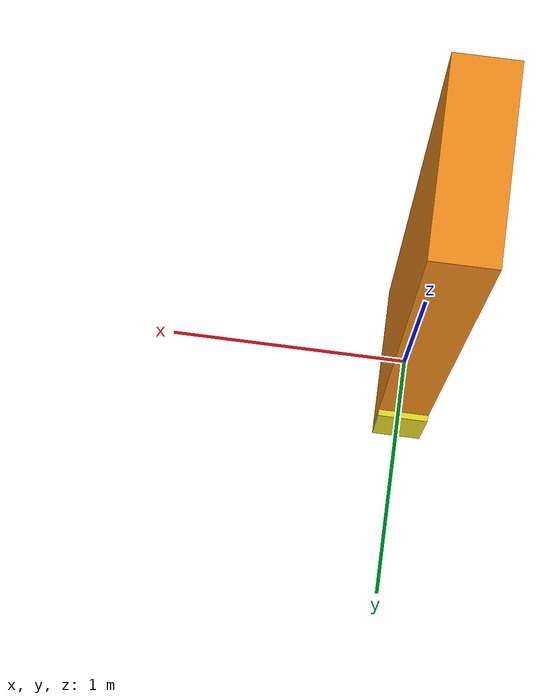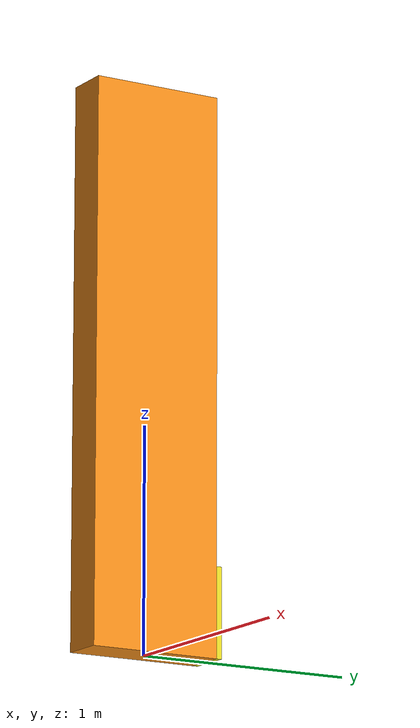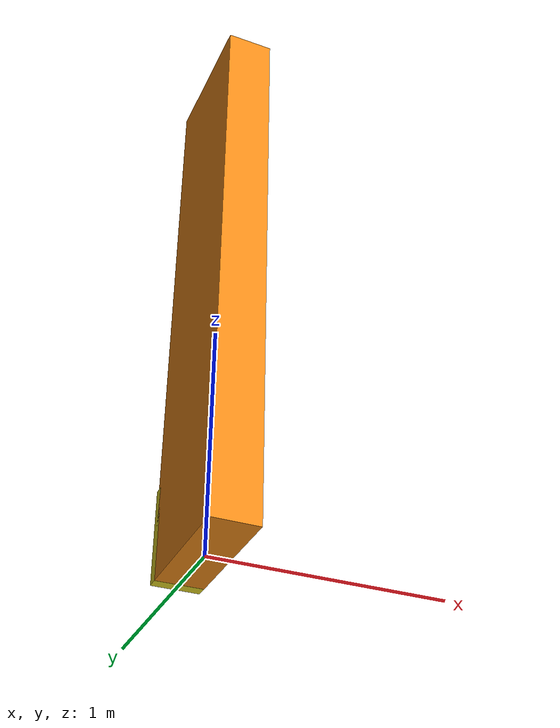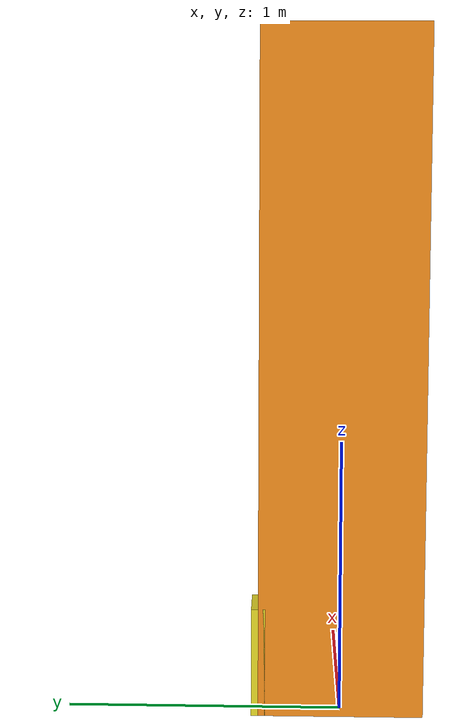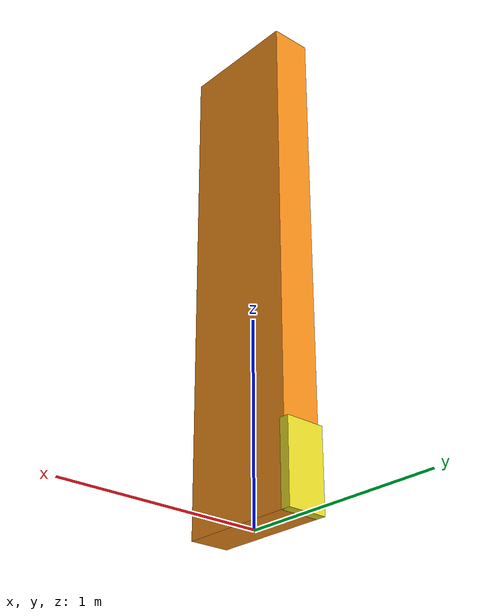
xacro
<?xml version="1.0"?>
<!-- Revolute-Revolute Manipulator -->
<!--
Copied and modified from ROS1 example -
https://github.com/ros-simulation/gazebo_ros_demos/blob/kinetic-devel/rrbot_description/urdf/rrbot.xacro
-->
<robot xmlns:xacro="http://www.ros.org/wiki/xacro" name="igus_axis">
  <!-- Used for fixing robot -->
<link name="world"/>

  <joint name="joint_world_to_base" type="fixed">
    <parent link="world"/>
    <child link="base_link" />
  </joint>

  <xacro:include filename="$(find igus_axis_description)/urdf/igus_axis.urdf.xacro" />

</robot>

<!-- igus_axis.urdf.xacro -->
<!-- Revolute-Revolute Manipulator -->
<!--
Copied and modified from ROS1 example -
https://github.com/ros-simulation/gazebo_ros_demos/blob/kinetic-devel/rrbot_description/urdf/rrbot.xacro
-->
<robot xmlns:xacro="http://www.ros.org/wiki/xacro" name="2dof_robot">
  <!-- Used for fixing robot -->
<link name="base_link"/>
<xacro:arg name="axisparent" default="base_link" />
<xacro:arg name="prefix" default="axis_" />
<xacro:arg name="axisend_link" default="end_link" />
<xacro:arg name="axis_ip" default="192.168.0.10" />

  <xacro:include filename="$(find igus_axis_description)/urdf/igus_axis_description.urdf.xacro" />

</robot>

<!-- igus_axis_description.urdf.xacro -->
<robot xmlns:xacro="http://www.ros.org/wiki/xacro">

  <xacro:include filename="$(find igus_axis_description)/urdf/igus_axis_macro.xacro" />

  <!-- Import Rviz colors -->
  <xacro:include filename="$(find igus_axis_description)/urdf/igus_axis_material.xacro" />

  <!-- Import RRBot ros2_control description -->
  <xacro:include filename="$(find igus_axis_description)/urdf/igus_axis.ros2_control.xacro" />

  <xacro:rrbot axisparent="$(arg axisparent)" prefix="$(arg prefix)" axisend_link="$(arg axisend_link)">
    <origin xyz="0 0 0" rpy="0 0 0" />
  </xacro:rrbot>

  <xacro:rrbot_ros2_control    namae="RRBot" prefix="$(arg prefix)" axis_ip="$(arg axis_ip)" />

</robot>

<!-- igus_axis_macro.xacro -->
<robot xmlns:xacro="http://www.ros.org/wiki/xacro">

  <xacro:macro name="rrbot" params="axisparent prefix axisend_link *origin">

  <!-- Constants for robot dimensions -->
  <xacro:property name="mass" value="1" /> <!-- arbitrary value for mass -->
  <xacro:property name="width1x" value="0.2" /> <!-- Square dimensions (widthxwidth) of beams -->
  <xacro:property name="width1y" value="0.6" /> <!-- Square dimensions (widthxwidth) of beams -->
  <xacro:property name="width2x" value="0.2" /> <!-- Square dimensions (widthxwidth) of beams -->
  <xacro:property name="width2y" value="0.05" /> <!-- Square dimensions (widthxwidth) of beams -->
  <xacro:property name="width" value="0.2" /> <!-- Square dimensions (widthxwidth) of beams -->

  <xacro:property name="height1" value="2.5" /> <!-- Link 1 -->
  <xacro:property name="height2" value=".4" /> <!-- Link 2 -->
  <xacro:property name="height3" value=".8" /> <!-- Link 3-->

  <xacro:property name="axel_offset" value="${width1y/2}" /> <!-- Space btw top of beam and the each joint -->

  <joint name="${prefix}base_joint" type="fixed">
    <xacro:insert_block name="origin" />
    <parent link="${axisparent}"/>
    <child link="${prefix}base_link" />
  </joint>

  <!-- Base Link -->
  <link name="${prefix}base_link">
    <collision>
      <origin xyz="0 0 ${height1/2}" rpy="0 0 0"/>
      <geometry>
        <box size="${width1x} ${width1y} ${height1}"/>
      </geometry>
    </collision>

    <visual>
      <origin xyz="0 0 ${height1/2}" rpy="0 0 0"/>
      <geometry>
        <box size="${width1x} ${width1y} ${height1}"/>
      </geometry>
      <material name="orange"/>
    </visual>

    <inertial>
      <origin xyz="0 0 ${height1/2}" rpy="0 0 0"/>
      <mass value="${mass}"/>
      <inertia
        ixx="${mass / 12.0 * (width1x*width1y + height1*height1)}" ixy="0.0" ixz="0.0"
        iyy="${mass / 12.0 * (height1*height1 + width1x*width1y)}" iyz="0.0"
        izz="${mass / 12.0 * (width1x*width1y + width1x*width1y)}"/>
    </inertial>
  </link>

  <joint name="${prefix}joint1" type="prismatic">
    <parent link="${prefix}base_link"/>
    <child link="${prefix}link1"/>
    <origin xyz="0 ${width1y/2} ${height2/2}" rpy="0 0 0"/>
    <axis xyz="0 0 1"/>
    <dynamics damping="0.7"/>
    <limit lower="0" upper="2" velocity=".05" effort="10"/>

  </joint>

  <!-- Middle Link -->
  <link name="${prefix}link1">
    <collision>
      <origin xyz="0 0 0" rpy="0 0 0"/>
      <geometry>
        <box size="${width2x} ${width2y} ${height2}"/>
      </geometry>
    </collision>

    <visual>
      <origin xyz="0 0 0" rpy="0 0 0"/>
      <geometry>
        <box size="${width2x} ${width2y} ${height2}"/>
      </geometry>
      <material name="yellow"/>
    </visual>

    <inertial>
      <origin xyz="0 0 0" rpy="0 0 0"/>
      <mass value="${mass}"/>
      <inertia
        ixx="${mass / 12.0 * (width2x*width2y + height2*height2)}" ixy="0.0" ixz="0.0"
        iyy="${mass / 12.0 * (height2*height2 + width2x*width2y)}" iyz="0.0"
        izz="${mass / 12.0 * (width2x*width2y + width2x*width2y)}"/>
    </inertial>
  </link>

  <joint name="${prefix}finaljoint" type="fixed">
    <parent link="${prefix}link1"/>
    <child link="${prefix}${axisend_link}"/>
    <origin xyz="0 0 0" rpy="0 0 0"/>
    <axis xyz="0 0 1"/>
    <dynamics damping="0.7"/>
    <limit lower="0" upper="2" velocity="100" effort="100"/>

  </joint>

  <!-- Middle Link -->
  <link name="${prefix}${axisend_link}">
    <collision>
      <origin xyz="0 0 0" rpy="0 0 0"/>
      <geometry>
        <box size="${width2x} ${width2y} ${height2}"/>
      </geometry>
    </collision>

    <visual>
      <origin xyz="0 0 0" rpy="0 0 0"/>
      <geometry>
        <box size="${width2x} ${width2y} ${height2}"/>
      </geometry>
      <material name="yellow"/>
    </visual>

    <inertial>
      <origin xyz="0 0 0" rpy="0 0 0"/>
      <mass value="${mass}"/>
      <inertia
        ixx="${mass / 12.0 * (width2x*width2y + height2*height2)}" ixy="0.0" ixz="0.0"
        iyy="${mass / 12.0 * (height2*height2 + width2x*width2y)}" iyz="0.0"
        izz="${mass / 12.0 * (width2x*width2y + width2x*width2y)}"/>
    </inertial>
  </link>

  </xacro:macro>
</robot>
